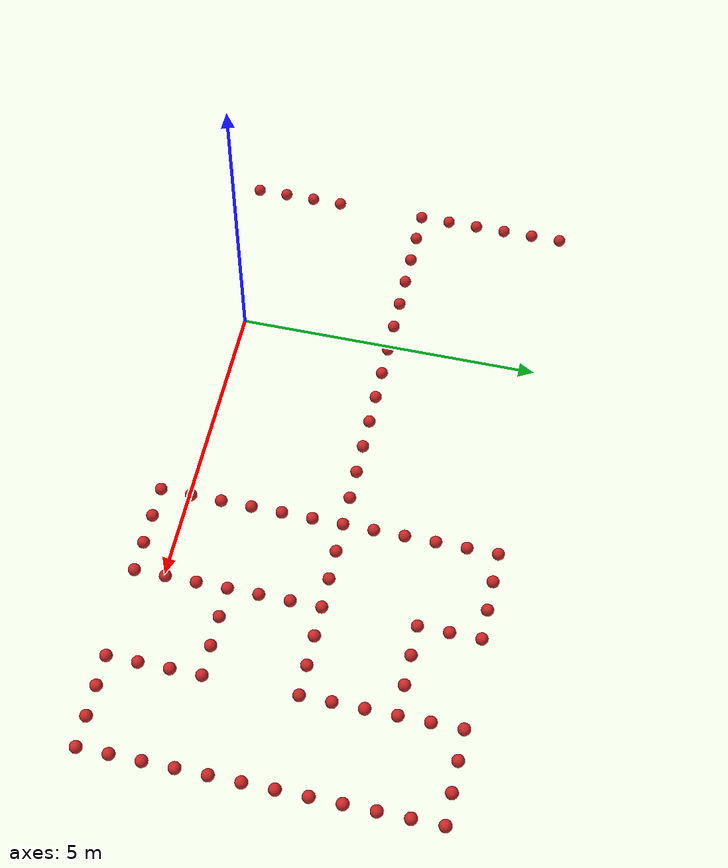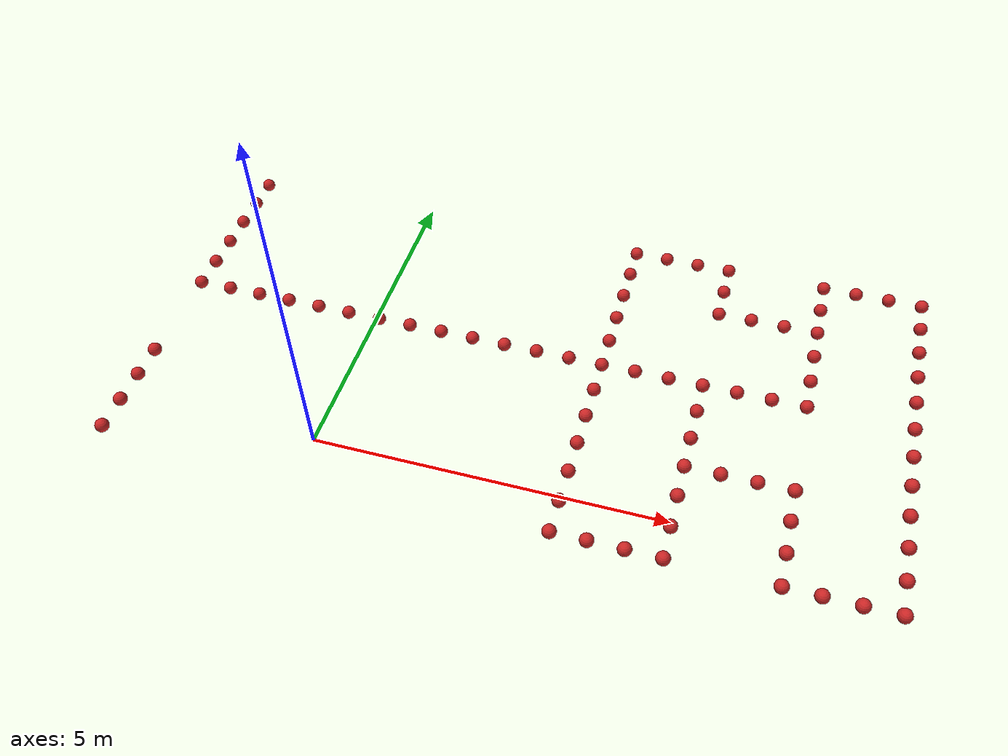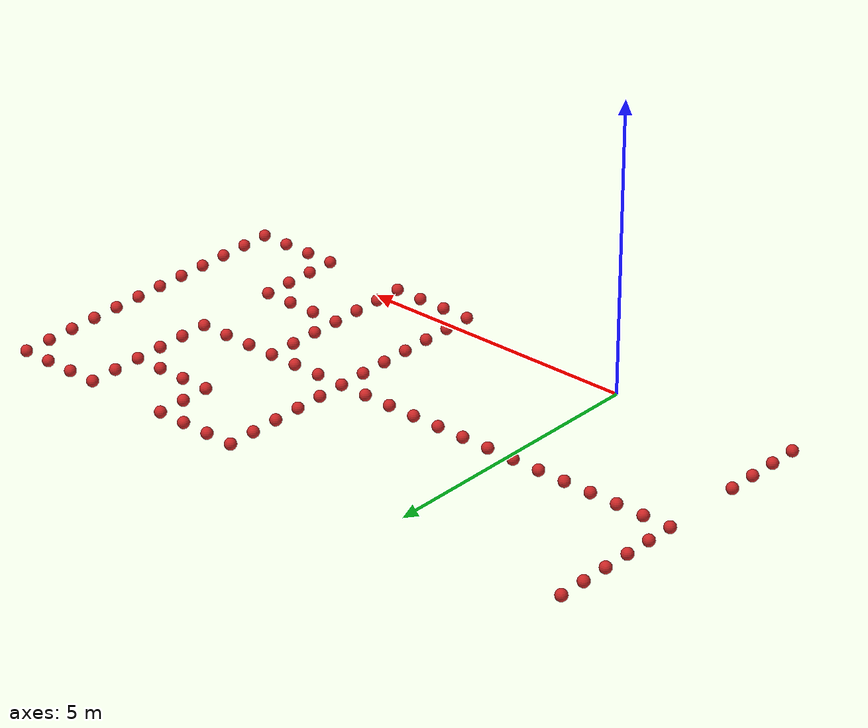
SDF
<sdf version="1.6">
 <model name="level1">
  <link name="Score_Point89">
   <collision name="Score_Point_Collision89">
    <geometry><sphere><radius>0.1</radius></sphere></geometry>
   </collision>
   <visual name="Score_Point_Visual89">
    <geometry><sphere><radius>0.1</radius></sphere></geometry>
    <material>
     <script><uri>file://media/materials/scripts/gazebo.material</uri><name>Gazebo/Red</name></script>
     <ambient>1 1 1 1</ambient>
    </material>
    <meta><layer>0</layer></meta>
   </visual>
   <pose>-3.0 -0.5 -0.08 0 0 0</pose>
   <script><uri>file://scripts/score_point_script.py</uri></script>
  </link>
  <link name="Score_Point90">
   <collision name="Score_Point_Collision90">
    <geometry><sphere><radius>0.1</radius></sphere></geometry>
   </collision>
   <visual name="Score_Point_Visual90">
    <geometry><sphere><radius>0.1</radius></sphere></geometry>
    <material>
     <script><uri>file://media/materials/scripts/gazebo.material</uri><name>Gazebo/Red</name></script>
     <ambient>1 1 1 1</ambient>
    </material>
    <meta><layer>0</layer></meta>
   </visual>
   <pose>-3.0 0.0 -0.08 0 0 0</pose>
   <script><uri>file://scripts/score_point_script.py</uri></script>
  </link>
  <link name="Score_Point91">
   <collision name="Score_Point_Collision91">
    <geometry><sphere><radius>0.1</radius></sphere></geometry>
   </collision>
   <visual name="Score_Point_Visual91">
    <geometry><sphere><radius>0.1</radius></sphere></geometry>
    <material>
     <script><uri>file://media/materials/scripts/gazebo.material</uri><name>Gazebo/Red</name></script>
     <ambient>1 1 1 1</ambient>
    </material>
    <meta><layer>0</layer></meta>
   </visual>
   <pose>-3.0 0.5 -0.08 0 0 0</pose>
   <script><uri>file://scripts/score_point_script.py</uri></script>
  </link>
  <link name="Score_Point92">
   <collision name="Score_Point_Collision92">
    <geometry><sphere><radius>0.1</radius></sphere></geometry>
   </collision>
   <visual name="Score_Point_Visual92">
    <geometry><sphere><radius>0.1</radius></sphere></geometry>
    <material>
     <script><uri>file://media/materials/scripts/gazebo.material</uri><name>Gazebo/Red</name></script>
     <ambient>1 1 1 1</ambient>
    </material>
    <meta><layer>0</layer></meta>
   </visual>
   <pose>-3.0 1.0 -0.08 0 0 0</pose>
   <script><uri>file://scripts/score_point_script.py</uri></script>
  </link>
  <link name="Score_Point93">
   <collision name="Score_Point_Collision93">
    <geometry><sphere><radius>0.1</radius></sphere></geometry>
   </collision>
   <visual name="Score_Point_Visual93">
    <geometry><sphere><radius>0.1</radius></sphere></geometry>
    <material>
     <script><uri>file://media/materials/scripts/gazebo.material</uri><name>Gazebo/Red</name></script>
     <ambient>1 1 1 1</ambient>
    </material>
    <meta><layer>0</layer></meta>
   </visual>
   <pose>-3.0 2.5 -0.08 0 0 0</pose>
   <script><uri>file://scripts/score_point_script.py</uri></script>
  </link>
  <link name="Score_Point94">
   <collision name="Score_Point_Collision94">
    <geometry><sphere><radius>0.1</radius></sphere></geometry>
   </collision>
   <visual name="Score_Point_Visual94">
    <geometry><sphere><radius>0.1</radius></sphere></geometry>
    <material>
     <script><uri>file://media/materials/scripts/gazebo.material</uri><name>Gazebo/Red</name></script>
     <ambient>1 1 1 1</ambient>
    </material>
    <meta><layer>0</layer></meta>
   </visual>
   <pose>-3.0 3.0 -0.08 0 0 0</pose>
   <script><uri>file://scripts/score_point_script.py</uri></script>
  </link>
  <link name="Score_Point95">
   <collision name="Score_Point_Collision95">
    <geometry><sphere><radius>0.1</radius></sphere></geometry>
   </collision>
   <visual name="Score_Point_Visual95">
    <geometry><sphere><radius>0.1</radius></sphere></geometry>
    <material>
     <script><uri>file://media/materials/scripts/gazebo.material</uri><name>Gazebo/Red</name></script>
     <ambient>1 1 1 1</ambient>
    </material>
    <meta><layer>0</layer></meta>
   </visual>
   <pose>-3.0 3.5 -0.08 0 0 0</pose>
   <script><uri>file://scripts/score_point_script.py</uri></script>
  </link>
  <link name="Score_Point96">
   <collision name="Score_Point_Collision96">
    <geometry><sphere><radius>0.1</radius></sphere></geometry>
   </collision>
   <visual name="Score_Point_Visual96">
    <geometry><sphere><radius>0.1</radius></sphere></geometry>
    <material>
     <script><uri>file://media/materials/scripts/gazebo.material</uri><name>Gazebo/Red</name></script>
     <ambient>1 1 1 1</ambient>
    </material>
    <meta><layer>0</layer></meta>
   </visual>
   <pose>-3.0 4.0 -0.08 0 0 0</pose>
   <script><uri>file://scripts/score_point_script.py</uri></script>
  </link>
  <link name="Score_Point97">
   <collision name="Score_Point_Collision97">
    <geometry><sphere><radius>0.1</radius></sphere></geometry>
   </collision>
   <visual name="Score_Point_Visual97">
    <geometry><sphere><radius>0.1</radius></sphere></geometry>
    <material>
     <script><uri>file://media/materials/scripts/gazebo.material</uri><name>Gazebo/Red</name></script>
     <ambient>1 1 1 1</ambient>
    </material>
    <meta><layer>0</layer></meta>
   </visual>
   <pose>-3.0 4.5 -0.08 0 0 0</pose>
   <script><uri>file://scripts/score_point_script.py</uri></script>
  </link>
  <link name="Score_Point98">
   <collision name="Score_Point_Collision98">
    <geometry><sphere><radius>0.1</radius></sphere></geometry>
   </collision>
   <visual name="Score_Point_Visual98">
    <geometry><sphere><radius>0.1</radius></sphere></geometry>
    <material>
     <script><uri>file://media/materials/scripts/gazebo.material</uri><name>Gazebo/Red</name></script>
     <ambient>1 1 1 1</ambient>
    </material>
    <meta><layer>0</layer></meta>
   </visual>
   <pose>-3.0 5.0 -0.08 0 0 0</pose>
   <script><uri>file://scripts/score_point_script.py</uri></script>
  </link>
  <link name="Score_Point100">
   <collision name="Score_Point_Collision100">
    <geometry><sphere><radius>0.1</radius></sphere></geometry>
   </collision>
   <visual name="Score_Point_Visual100">
    <geometry><sphere><radius>0.1</radius></sphere></geometry>
    <material>
     <script><uri>file://media/materials/scripts/gazebo.material</uri><name>Gazebo/Red</name></script>
     <ambient>1 1 1 1</ambient>
    </material>
    <meta><layer>0</layer></meta>
   </visual>
   <pose>-2.5 2.5 -0.08 0 0 0</pose>
   <script><uri>file://scripts/score_point_script.py</uri></script>
  </link>
  <link name="Score_Point102">
   <collision name="Score_Point_Collision102">
    <geometry><sphere><radius>0.1</radius></sphere></geometry>
   </collision>
   <visual name="Score_Point_Visual102">
    <geometry><sphere><radius>0.1</radius></sphere></geometry>
    <material>
     <script><uri>file://media/materials/scripts/gazebo.material</uri><name>Gazebo/Red</name></script>
     <ambient>1 1 1 1</ambient>
    </material>
    <meta><layer>0</layer></meta>
   </visual>
   <pose>-2.0 2.5 -0.08 0 0 0</pose>
   <script><uri>file://scripts/score_point_script.py</uri></script>
  </link>
  <link name="Score_Point104">
   <collision name="Score_Point_Collision104">
    <geometry><sphere><radius>0.1</radius></sphere></geometry>
   </collision>
   <visual name="Score_Point_Visual104">
    <geometry><sphere><radius>0.1</radius></sphere></geometry>
    <material>
     <script><uri>file://media/materials/scripts/gazebo.material</uri><name>Gazebo/Red</name></script>
     <ambient>1 1 1 1</ambient>
    </material>
    <meta><layer>0</layer></meta>
   </visual>
   <pose>-1.5 2.5 -0.08 0 0 0</pose>
   <script><uri>file://scripts/score_point_script.py</uri></script>
  </link>
  <link name="Score_Point106">
   <collision name="Score_Point_Collision106">
    <geometry><sphere><radius>0.1</radius></sphere></geometry>
   </collision>
   <visual name="Score_Point_Visual106">
    <geometry><sphere><radius>0.1</radius></sphere></geometry>
    <material>
     <script><uri>file://media/materials/scripts/gazebo.material</uri><name>Gazebo/Red</name></script>
     <ambient>1 1 1 1</ambient>
    </material>
    <meta><layer>0</layer></meta>
   </visual>
   <pose>-1.0 2.5 -0.08 0 0 0</pose>
   <script><uri>file://scripts/score_point_script.py</uri></script>
  </link>
  <link name="Score_Point108">
   <collision name="Score_Point_Collision108">
    <geometry><sphere><radius>0.1</radius></sphere></geometry>
   </collision>
   <visual name="Score_Point_Visual108">
    <geometry><sphere><radius>0.1</radius></sphere></geometry>
    <material>
     <script><uri>file://media/materials/scripts/gazebo.material</uri><name>Gazebo/Red</name></script>
     <ambient>1 1 1 1</ambient>
    </material>
    <meta><layer>0</layer></meta>
   </visual>
   <pose>-0.5 2.5 -0.08 0 0 0</pose>
   <script><uri>file://scripts/score_point_script.py</uri></script>
  </link>
  <link name="Score_Point110">
   <collision name="Score_Point_Collision110">
    <geometry><sphere><radius>0.1</radius></sphere></geometry>
   </collision>
   <visual name="Score_Point_Visual110">
    <geometry><sphere><radius>0.1</radius></sphere></geometry>
    <material>
     <script><uri>file://media/materials/scripts/gazebo.material</uri><name>Gazebo/Red</name></script>
     <ambient>1 1 1 1</ambient>
    </material>
    <meta><layer>0</layer></meta>
   </visual>
   <pose>0.0 2.5 -0.08 0 0 0</pose>
   <script><uri>file://scripts/score_point_script.py</uri></script>
  </link>
  <link name="Score_Point112">
   <collision name="Score_Point_Collision112">
    <geometry><sphere><radius>0.1</radius></sphere></geometry>
   </collision>
   <visual name="Score_Point_Visual112">
    <geometry><sphere><radius>0.1</radius></sphere></geometry>
    <material>
     <script><uri>file://media/materials/scripts/gazebo.material</uri><name>Gazebo/Red</name></script>
     <ambient>1 1 1 1</ambient>
    </material>
    <meta><layer>0</layer></meta>
   </visual>
   <pose>0.5 2.5 -0.08 0 0 0</pose>
   <script><uri>file://scripts/score_point_script.py</uri></script>
  </link>
  <link name="Score_Point114">
   <collision name="Score_Point_Collision114">
    <geometry><sphere><radius>0.1</radius></sphere></geometry>
   </collision>
   <visual name="Score_Point_Visual114">
    <geometry><sphere><radius>0.1</radius></sphere></geometry>
    <material>
     <script><uri>file://media/materials/scripts/gazebo.material</uri><name>Gazebo/Red</name></script>
     <ambient>1 1 1 1</ambient>
    </material>
    <meta><layer>0</layer></meta>
   </visual>
   <pose>1.0 2.5 -0.08 0 0 0</pose>
   <script><uri>file://scripts/score_point_script.py</uri></script>
  </link>
  <link name="Score_Point116">
   <collision name="Score_Point_Collision116">
    <geometry><sphere><radius>0.1</radius></sphere></geometry>
   </collision>
   <visual name="Score_Point_Visual116">
    <geometry><sphere><radius>0.1</radius></sphere></geometry>
    <material>
     <script><uri>file://media/materials/scripts/gazebo.material</uri><name>Gazebo/Red</name></script>
     <ambient>1 1 1 1</ambient>
    </material>
    <meta><layer>0</layer></meta>
   </visual>
   <pose>1.5 2.5 -0.08 0 0 0</pose>
   <script><uri>file://scripts/score_point_script.py</uri></script>
  </link>
  <link name="Score_Point118">
   <collision name="Score_Point_Collision118">
    <geometry><sphere><radius>0.1</radius></sphere></geometry>
   </collision>
   <visual name="Score_Point_Visual118">
    <geometry><sphere><radius>0.1</radius></sphere></geometry>
    <material>
     <script><uri>file://media/materials/scripts/gazebo.material</uri><name>Gazebo/Red</name></script>
     <ambient>1 1 1 1</ambient>
    </material>
    <meta><layer>0</layer></meta>
   </visual>
   <pose>2.0 2.5 -0.08 0 0 0</pose>
   <script><uri>file://scripts/score_point_script.py</uri></script>
  </link>
  <link name="Score_Point120">
   <collision name="Score_Point_Collision120">
    <geometry><sphere><radius>0.1</radius></sphere></geometry>
   </collision>
   <visual name="Score_Point_Visual120">
    <geometry><sphere><radius>0.1</radius></sphere></geometry>
    <material>
     <script><uri>file://media/materials/scripts/gazebo.material</uri><name>Gazebo/Red</name></script>
     <ambient>1 1 1 1</ambient>
    </material>
    <meta><layer>0</layer></meta>
   </visual>
   <pose>2.5 2.5 -0.08 0 0 0</pose>
   <script><uri>file://scripts/score_point_script.py</uri></script>
  </link>
  <link name="Score_Point122">
   <collision name="Score_Point_Collision122">
    <geometry><sphere><radius>0.1</radius></sphere></geometry>
   </collision>
   <visual name="Score_Point_Visual122">
    <geometry><sphere><radius>0.1</radius></sphere></geometry>
    <material>
     <script><uri>file://media/materials/scripts/gazebo.material</uri><name>Gazebo/Red</name></script>
     <ambient>1 1 1 1</ambient>
    </material>
    <meta><layer>0</layer></meta>
   </visual>
   <pose>3.0 2.5 -0.08 0 0 0</pose>
   <script><uri>file://scripts/score_point_script.py</uri></script>
  </link>
  <link name="Score_Point135">
   <collision name="Score_Point_Collision135">
    <geometry><sphere><radius>0.1</radius></sphere></geometry>
   </collision>
   <visual name="Score_Point_Visual135">
    <geometry><sphere><radius>0.1</radius></sphere></geometry>
    <material>
     <script><uri>file://media/materials/scripts/gazebo.material</uri><name>Gazebo/Red</name></script>
     <ambient>1 1 1 1</ambient>
    </material>
    <meta><layer>0</layer></meta>
   </visual>
   <pose>3.5 -0.5 -0.08 0 0 0</pose>
   <script><uri>file://scripts/score_point_script.py</uri></script>
  </link>
  <link name="Score_Point136">
   <collision name="Score_Point_Collision136">
    <geometry><sphere><radius>0.1</radius></sphere></geometry>
   </collision>
   <visual name="Score_Point_Visual136">
    <geometry><sphere><radius>0.1</radius></sphere></geometry>
    <material>
     <script><uri>file://media/materials/scripts/gazebo.material</uri><name>Gazebo/Red</name></script>
     <ambient>1 1 1 1</ambient>
    </material>
    <meta><layer>0</layer></meta>
   </visual>
   <pose>3.5 0.0 -0.08 0 0 0</pose>
   <script><uri>file://scripts/score_point_script.py</uri></script>
  </link>
  <link name="Score_Point137">
   <collision name="Score_Point_Collision137">
    <geometry><sphere><radius>0.1</radius></sphere></geometry>
   </collision>
   <visual name="Score_Point_Visual137">
    <geometry><sphere><radius>0.1</radius></sphere></geometry>
    <material>
     <script><uri>file://media/materials/scripts/gazebo.material</uri><name>Gazebo/Red</name></script>
     <ambient>1 1 1 1</ambient>
    </material>
    <meta><layer>0</layer></meta>
   </visual>
   <pose>3.5 0.5 -0.08 0 0 0</pose>
   <script><uri>file://scripts/score_point_script.py</uri></script>
  </link>
  <link name="Score_Point138">
   <collision name="Score_Point_Collision138">
    <geometry><sphere><radius>0.1</radius></sphere></geometry>
   </collision>
   <visual name="Score_Point_Visual138">
    <geometry><sphere><radius>0.1</radius></sphere></geometry>
    <material>
     <script><uri>file://media/materials/scripts/gazebo.material</uri><name>Gazebo/Red</name></script>
     <ambient>1 1 1 1</ambient>
    </material>
    <meta><layer>0</layer></meta>
   </visual>
   <pose>3.5 1.0 -0.08 0 0 0</pose>
   <script><uri>file://scripts/score_point_script.py</uri></script>
  </link>
  <link name="Score_Point139">
   <collision name="Score_Point_Collision139">
    <geometry><sphere><radius>0.1</radius></sphere></geometry>
   </collision>
   <visual name="Score_Point_Visual139">
    <geometry><sphere><radius>0.1</radius></sphere></geometry>
    <material>
     <script><uri>file://media/materials/scripts/gazebo.material</uri><name>Gazebo/Red</name></script>
     <ambient>1 1 1 1</ambient>
    </material>
    <meta><layer>0</layer></meta>
   </visual>
   <pose>3.5 1.5 -0.08 0 0 0</pose>
   <script><uri>file://scripts/score_point_script.py</uri></script>
  </link>
  <link name="Score_Point140">
   <collision name="Score_Point_Collision140">
    <geometry><sphere><radius>0.1</radius></sphere></geometry>
   </collision>
   <visual name="Score_Point_Visual140">
    <geometry><sphere><radius>0.1</radius></sphere></geometry>
    <material>
     <script><uri>file://media/materials/scripts/gazebo.material</uri><name>Gazebo/Red</name></script>
     <ambient>1 1 1 1</ambient>
    </material>
    <meta><layer>0</layer></meta>
   </visual>
   <pose>3.5 2.0 -0.08 0 0 0</pose>
   <script><uri>file://scripts/score_point_script.py</uri></script>
  </link>
  <link name="Score_Point141">
   <collision name="Score_Point_Collision141">
    <geometry><sphere><radius>0.1</radius></sphere></geometry>
   </collision>
   <visual name="Score_Point_Visual141">
    <geometry><sphere><radius>0.1</radius></sphere></geometry>
    <material>
     <script><uri>file://media/materials/scripts/gazebo.material</uri><name>Gazebo/Red</name></script>
     <ambient>1 1 1 1</ambient>
    </material>
    <meta><layer>0</layer></meta>
   </visual>
   <pose>3.5 2.5 -0.08 0 0 0</pose>
   <script><uri>file://scripts/score_point_script.py</uri></script>
  </link>
  <link name="Score_Point142">
   <collision name="Score_Point_Collision142">
    <geometry><sphere><radius>0.1</radius></sphere></geometry>
   </collision>
   <visual name="Score_Point_Visual142">
    <geometry><sphere><radius>0.1</radius></sphere></geometry>
    <material>
     <script><uri>file://media/materials/scripts/gazebo.material</uri><name>Gazebo/Red</name></script>
     <ambient>1 1 1 1</ambient>
    </material>
    <meta><layer>0</layer></meta>
   </visual>
   <pose>3.5 3.0 -0.08 0 0 0</pose>
   <script><uri>file://scripts/score_point_script.py</uri></script>
  </link>
  <link name="Score_Point143">
   <collision name="Score_Point_Collision143">
    <geometry><sphere><radius>0.1</radius></sphere></geometry>
   </collision>
   <visual name="Score_Point_Visual143">
    <geometry><sphere><radius>0.1</radius></sphere></geometry>
    <material>
     <script><uri>file://media/materials/scripts/gazebo.material</uri><name>Gazebo/Red</name></script>
     <ambient>1 1 1 1</ambient>
    </material>
    <meta><layer>0</layer></meta>
   </visual>
   <pose>3.5 3.5 -0.08 0 0 0</pose>
   <script><uri>file://scripts/score_point_script.py</uri></script>
  </link>
  <link name="Score_Point144">
   <collision name="Score_Point_Collision144">
    <geometry><sphere><radius>0.1</radius></sphere></geometry>
   </collision>
   <visual name="Score_Point_Visual144">
    <geometry><sphere><radius>0.1</radius></sphere></geometry>
    <material>
     <script><uri>file://media/materials/scripts/gazebo.material</uri><name>Gazebo/Red</name></script>
     <ambient>1 1 1 1</ambient>
    </material>
    <meta><layer>0</layer></meta>
   </visual>
   <pose>3.5 4.0 -0.08 0 0 0</pose>
   <script><uri>file://scripts/score_point_script.py</uri></script>
  </link>
  <link name="Score_Point145">
   <collision name="Score_Point_Collision145">
    <geometry><sphere><radius>0.1</radius></sphere></geometry>
   </collision>
   <visual name="Score_Point_Visual145">
    <geometry><sphere><radius>0.1</radius></sphere></geometry>
    <material>
     <script><uri>file://media/materials/scripts/gazebo.material</uri><name>Gazebo/Red</name></script>
     <ambient>1 1 1 1</ambient>
    </material>
    <meta><layer>0</layer></meta>
   </visual>
   <pose>3.5 4.5 -0.08 0 0 0</pose>
   <script><uri>file://scripts/score_point_script.py</uri></script>
  </link>
  <link name="Score_Point146">
   <collision name="Score_Point_Collision146">
    <geometry><sphere><radius>0.1</radius></sphere></geometry>
   </collision>
   <visual name="Score_Point_Visual146">
    <geometry><sphere><radius>0.1</radius></sphere></geometry>
    <material>
     <script><uri>file://media/materials/scripts/gazebo.material</uri><name>Gazebo/Red</name></script>
     <ambient>1 1 1 1</ambient>
    </material>
    <meta><layer>0</layer></meta>
   </visual>
   <pose>3.5 5.0 -0.08 0 0 0</pose>
   <script><uri>file://scripts/score_point_script.py</uri></script>
  </link>
  <link name="Score_Point150">
   <collision name="Score_Point_Collision150">
    <geometry><sphere><radius>0.1</radius></sphere></geometry>
   </collision>
   <visual name="Score_Point_Visual150">
    <geometry><sphere><radius>0.1</radius></sphere></geometry>
    <material>
     <script><uri>file://media/materials/scripts/gazebo.material</uri><name>Gazebo/Red</name></script>
     <ambient>1 1 1 1</ambient>
    </material>
    <meta><layer>0</layer></meta>
   </visual>
   <pose>4.0 -0.5 -0.08 0 0 0</pose>
   <script><uri>file://scripts/score_point_script.py</uri></script>
  </link>
  <link name="Score_Point151">
   <collision name="Score_Point_Collision151">
    <geometry><sphere><radius>0.1</radius></sphere></geometry>
   </collision>
   <visual name="Score_Point_Visual151">
    <geometry><sphere><radius>0.1</radius></sphere></geometry>
    <material>
     <script><uri>file://media/materials/scripts/gazebo.material</uri><name>Gazebo/Red</name></script>
     <ambient>1 1 1 1</ambient>
    </material>
    <meta><layer>0</layer></meta>
   </visual>
   <pose>4.0 2.5 -0.08 0 0 0</pose>
   <script><uri>file://scripts/score_point_script.py</uri></script>
  </link>
  <link name="Score_Point152">
   <collision name="Score_Point_Collision152">
    <geometry><sphere><radius>0.1</radius></sphere></geometry>
   </collision>
   <visual name="Score_Point_Visual152">
    <geometry><sphere><radius>0.1</radius></sphere></geometry>
    <material>
     <script><uri>file://media/materials/scripts/gazebo.material</uri><name>Gazebo/Red</name></script>
     <ambient>1 1 1 1</ambient>
    </material>
    <meta><layer>0</layer></meta>
   </visual>
   <pose>4.0 5.0 -0.08 0 0 0</pose>
   <script><uri>file://scripts/score_point_script.py</uri></script>
  </link>
  <link name="Score_Point156">
   <collision name="Score_Point_Collision156">
    <geometry><sphere><radius>0.1</radius></sphere></geometry>
   </collision>
   <visual name="Score_Point_Visual156">
    <geometry><sphere><radius>0.1</radius></sphere></geometry>
    <material>
     <script><uri>file://media/materials/scripts/gazebo.material</uri><name>Gazebo/Red</name></script>
     <ambient>1 1 1 1</ambient>
    </material>
    <meta><layer>0</layer></meta>
   </visual>
   <pose>4.5 -0.5 -0.08 0 0 0</pose>
   <script><uri>file://scripts/score_point_script.py</uri></script>
  </link>
  <link name="Score_Point157">
   <collision name="Score_Point_Collision157">
    <geometry><sphere><radius>0.1</radius></sphere></geometry>
   </collision>
   <visual name="Score_Point_Visual157">
    <geometry><sphere><radius>0.1</radius></sphere></geometry>
    <material>
     <script><uri>file://media/materials/scripts/gazebo.material</uri><name>Gazebo/Red</name></script>
     <ambient>1 1 1 1</ambient>
    </material>
    <meta><layer>0</layer></meta>
   </visual>
   <pose>4.5 2.5 -0.08 0 0 0</pose>
   <script><uri>file://scripts/score_point_script.py</uri></script>
  </link>
  <link name="Score_Point158">
   <collision name="Score_Point_Collision158">
    <geometry><sphere><radius>0.1</radius></sphere></geometry>
   </collision>
   <visual name="Score_Point_Visual158">
    <geometry><sphere><radius>0.1</radius></sphere></geometry>
    <material>
     <script><uri>file://media/materials/scripts/gazebo.material</uri><name>Gazebo/Red</name></script>
     <ambient>1 1 1 1</ambient>
    </material>
    <meta><layer>0</layer></meta>
   </visual>
   <pose>4.5 5.0 -0.08 0 0 0</pose>
   <script><uri>file://scripts/score_point_script.py</uri></script>
  </link>
  <link name="Score_Point171">
   <collision name="Score_Point_Collision171">
    <geometry><sphere><radius>0.1</radius></sphere></geometry>
   </collision>
   <visual name="Score_Point_Visual171">
    <geometry><sphere><radius>0.1</radius></sphere></geometry>
    <material>
     <script><uri>file://media/materials/scripts/gazebo.material</uri><name>Gazebo/Red</name></script>
     <ambient>1 1 1 1</ambient>
    </material>
    <meta><layer>0</layer></meta>
   </visual>
   <pose>5.0 -0.5 -0.08 0 0 0</pose>
   <script><uri>file://scripts/score_point_script.py</uri></script>
  </link>
  <link name="Score_Point172">
   <collision name="Score_Point_Collision172">
    <geometry><sphere><radius>0.1</radius></sphere></geometry>
   </collision>
   <visual name="Score_Point_Visual172">
    <geometry><sphere><radius>0.1</radius></sphere></geometry>
    <material>
     <script><uri>file://media/materials/scripts/gazebo.material</uri><name>Gazebo/Red</name></script>
     <ambient>1 1 1 1</ambient>
    </material>
    <meta><layer>0</layer></meta>
   </visual>
   <pose>5.0 0.0 -0.08 0 0 0</pose>
   <script><uri>file://scripts/score_point_script.py</uri></script>
  </link>
  <link name="Score_Point173">
   <collision name="Score_Point_Collision173">
    <geometry><sphere><radius>0.1</radius></sphere></geometry>
   </collision>
   <visual name="Score_Point_Visual173">
    <geometry><sphere><radius>0.1</radius></sphere></geometry>
    <material>
     <script><uri>file://media/materials/scripts/gazebo.material</uri><name>Gazebo/Red</name></script>
     <ambient>1 1 1 1</ambient>
    </material>
    <meta><layer>0</layer></meta>
   </visual>
   <pose>5.0 0.5 -0.08 0 0 0</pose>
   <script><uri>file://scripts/score_point_script.py</uri></script>
  </link>
  <link name="Score_Point174">
   <collision name="Score_Point_Collision174">
    <geometry><sphere><radius>0.1</radius></sphere></geometry>
   </collision>
   <visual name="Score_Point_Visual174">
    <geometry><sphere><radius>0.1</radius></sphere></geometry>
    <material>
     <script><uri>file://media/materials/scripts/gazebo.material</uri><name>Gazebo/Red</name></script>
     <ambient>1 1 1 1</ambient>
    </material>
    <meta><layer>0</layer></meta>
   </visual>
   <pose>5.0 1.0 -0.08 0 0 0</pose>
   <script><uri>file://scripts/score_point_script.py</uri></script>
  </link>
  <link name="Score_Point175">
   <collision name="Score_Point_Collision175">
    <geometry><sphere><radius>0.1</radius></sphere></geometry>
   </collision>
   <visual name="Score_Point_Visual175">
    <geometry><sphere><radius>0.1</radius></sphere></geometry>
    <material>
     <script><uri>file://media/materials/scripts/gazebo.material</uri><name>Gazebo/Red</name></script>
     <ambient>1 1 1 1</ambient>
    </material>
    <meta><layer>0</layer></meta>
   </visual>
   <pose>5.0 1.5 -0.08 0 0 0</pose>
   <script><uri>file://scripts/score_point_script.py</uri></script>
  </link>
  <link name="Score_Point176">
   <collision name="Score_Point_Collision176">
    <geometry><sphere><radius>0.1</radius></sphere></geometry>
   </collision>
   <visual name="Score_Point_Visual176">
    <geometry><sphere><radius>0.1</radius></sphere></geometry>
    <material>
     <script><uri>file://media/materials/scripts/gazebo.material</uri><name>Gazebo/Red</name></script>
     <ambient>1 1 1 1</ambient>
    </material>
    <meta><layer>0</layer></meta>
   </visual>
   <pose>5.0 2.0 -0.08 0 0 0</pose>
   <script><uri>file://scripts/score_point_script.py</uri></script>
  </link>
  <link name="Score_Point177">
   <collision name="Score_Point_Collision177">
    <geometry><sphere><radius>0.1</radius></sphere></geometry>
   </collision>
   <visual name="Score_Point_Visual177">
    <geometry><sphere><radius>0.1</radius></sphere></geometry>
    <material>
     <script><uri>file://media/materials/scripts/gazebo.material</uri><name>Gazebo/Red</name></script>
     <ambient>1 1 1 1</ambient>
    </material>
    <meta><layer>0</layer></meta>
   </visual>
   <pose>5.0 2.5 -0.08 0 0 0</pose>
   <script><uri>file://scripts/score_point_script.py</uri></script>
  </link>
  <link name="Score_Point178">
   <collision name="Score_Point_Collision178">
    <geometry><sphere><radius>0.1</radius></sphere></geometry>
   </collision>
   <visual name="Score_Point_Visual178">
    <geometry><sphere><radius>0.1</radius></sphere></geometry>
    <material>
     <script><uri>file://media/materials/scripts/gazebo.material</uri><name>Gazebo/Red</name></script>
     <ambient>1 1 1 1</ambient>
    </material>
    <meta><layer>0</layer></meta>
   </visual>
   <pose>5.0 4.0 -0.08 0 0 0</pose>
   <script><uri>file://scripts/score_point_script.py</uri></script>
  </link>
  <link name="Score_Point179">
   <collision name="Score_Point_Collision179">
    <geometry><sphere><radius>0.1</radius></sphere></geometry>
   </collision>
   <visual name="Score_Point_Visual179">
    <geometry><sphere><radius>0.1</radius></sphere></geometry>
    <material>
     <script><uri>file://media/materials/scripts/gazebo.material</uri><name>Gazebo/Red</name></script>
     <ambient>1 1 1 1</ambient>
    </material>
    <meta><layer>0</layer></meta>
   </visual>
   <pose>5.0 4.5 -0.08 0 0 0</pose>
   <script><uri>file://scripts/score_point_script.py</uri></script>
  </link>
  <link name="Score_Point180">
   <collision name="Score_Point_Collision180">
    <geometry><sphere><radius>0.1</radius></sphere></geometry>
   </collision>
   <visual name="Score_Point_Visual180">
    <geometry><sphere><radius>0.1</radius></sphere></geometry>
    <material>
     <script><uri>file://media/materials/scripts/gazebo.material</uri><name>Gazebo/Red</name></script>
     <ambient>1 1 1 1</ambient>
    </material>
    <meta><layer>0</layer></meta>
   </visual>
   <pose>5.0 5.0 -0.08 0 0 0</pose>
   <script><uri>file://scripts/score_point_script.py</uri></script>
  </link>
  <link name="Score_Point184">
   <collision name="Score_Point_Collision184">
    <geometry><sphere><radius>0.1</radius></sphere></geometry>
   </collision>
   <visual name="Score_Point_Visual184">
    <geometry><sphere><radius>0.1</radius></sphere></geometry>
    <material>
     <script><uri>file://media/materials/scripts/gazebo.material</uri><name>Gazebo/Red</name></script>
     <ambient>1 1 1 1</ambient>
    </material>
    <meta><layer>0</layer></meta>
   </visual>
   <pose>5.5 1.0 -0.08 0 0 0</pose>
   <script><uri>file://scripts/score_point_script.py</uri></script>
  </link>
  <link name="Score_Point185">
   <collision name="Score_Point_Collision185">
    <geometry><sphere><radius>0.1</radius></sphere></geometry>
   </collision>
   <visual name="Score_Point_Visual185">
    <geometry><sphere><radius>0.1</radius></sphere></geometry>
    <material>
     <script><uri>file://media/materials/scripts/gazebo.material</uri><name>Gazebo/Red</name></script>
     <ambient>1 1 1 1</ambient>
    </material>
    <meta><layer>0</layer></meta>
   </visual>
   <pose>5.5 2.5 -0.08 0 0 0</pose>
   <script><uri>file://scripts/score_point_script.py</uri></script>
  </link>
  <link name="Score_Point186">
   <collision name="Score_Point_Collision186">
    <geometry><sphere><radius>0.1</radius></sphere></geometry>
   </collision>
   <visual name="Score_Point_Visual186">
    <geometry><sphere><radius>0.1</radius></sphere></geometry>
    <material>
     <script><uri>file://media/materials/scripts/gazebo.material</uri><name>Gazebo/Red</name></script>
     <ambient>1 1 1 1</ambient>
    </material>
    <meta><layer>0</layer></meta>
   </visual>
   <pose>5.5 4.0 -0.08 0 0 0</pose>
   <script><uri>file://scripts/score_point_script.py</uri></script>
  </link>
  <link name="Score_Point190">
   <collision name="Score_Point_Collision190">
    <geometry><sphere><radius>0.1</radius></sphere></geometry>
   </collision>
   <visual name="Score_Point_Visual190">
    <geometry><sphere><radius>0.1</radius></sphere></geometry>
    <material>
     <script><uri>file://media/materials/scripts/gazebo.material</uri><name>Gazebo/Red</name></script>
     <ambient>1 1 1 1</ambient>
    </material>
    <meta><layer>0</layer></meta>
   </visual>
   <pose>6.0 1.0 -0.08 0 0 0</pose>
   <script><uri>file://scripts/score_point_script.py</uri></script>
  </link>
  <link name="Score_Point191">
   <collision name="Score_Point_Collision191">
    <geometry><sphere><radius>0.1</radius></sphere></geometry>
   </collision>
   <visual name="Score_Point_Visual191">
    <geometry><sphere><radius>0.1</radius></sphere></geometry>
    <material>
     <script><uri>file://media/materials/scripts/gazebo.material</uri><name>Gazebo/Red</name></script>
     <ambient>1 1 1 1</ambient>
    </material>
    <meta><layer>0</layer></meta>
   </visual>
   <pose>6.0 2.5 -0.08 0 0 0</pose>
   <script><uri>file://scripts/score_point_script.py</uri></script>
  </link>
  <link name="Score_Point192">
   <collision name="Score_Point_Collision192">
    <geometry><sphere><radius>0.1</radius></sphere></geometry>
   </collision>
   <visual name="Score_Point_Visual192">
    <geometry><sphere><radius>0.1</radius></sphere></geometry>
    <material>
     <script><uri>file://media/materials/scripts/gazebo.material</uri><name>Gazebo/Red</name></script>
     <ambient>1 1 1 1</ambient>
    </material>
    <meta><layer>0</layer></meta>
   </visual>
   <pose>6.0 4.0 -0.08 0 0 0</pose>
   <script><uri>file://scripts/score_point_script.py</uri></script>
  </link>
  <link name="Score_Point203">
   <collision name="Score_Point_Collision203">
    <geometry><sphere><radius>0.1</radius></sphere></geometry>
   </collision>
   <visual name="Score_Point_Visual203">
    <geometry><sphere><radius>0.1</radius></sphere></geometry>
    <material>
     <script><uri>file://media/materials/scripts/gazebo.material</uri><name>Gazebo/Red</name></script>
     <ambient>1 1 1 1</ambient>
    </material>
    <meta><layer>0</layer></meta>
   </visual>
   <pose>6.5 -0.5 -0.08 0 0 0</pose>
   <script><uri>file://scripts/score_point_script.py</uri></script>
  </link>
  <link name="Score_Point204">
   <collision name="Score_Point_Collision204">
    <geometry><sphere><radius>0.1</radius></sphere></geometry>
   </collision>
   <visual name="Score_Point_Visual204">
    <geometry><sphere><radius>0.1</radius></sphere></geometry>
    <material>
     <script><uri>file://media/materials/scripts/gazebo.material</uri><name>Gazebo/Red</name></script>
     <ambient>1 1 1 1</ambient>
    </material>
    <meta><layer>0</layer></meta>
   </visual>
   <pose>6.5 0.0 -0.08 0 0 0</pose>
   <script><uri>file://scripts/score_point_script.py</uri></script>
  </link>
  <link name="Score_Point205">
   <collision name="Score_Point_Collision205">
    <geometry><sphere><radius>0.1</radius></sphere></geometry>
   </collision>
   <visual name="Score_Point_Visual205">
    <geometry><sphere><radius>0.1</radius></sphere></geometry>
    <material>
     <script><uri>file://media/materials/scripts/gazebo.material</uri><name>Gazebo/Red</name></script>
     <ambient>1 1 1 1</ambient>
    </material>
    <meta><layer>0</layer></meta>
   </visual>
   <pose>6.5 0.5 -0.08 0 0 0</pose>
   <script><uri>file://scripts/score_point_script.py</uri></script>
  </link>
  <link name="Score_Point206">
   <collision name="Score_Point_Collision206">
    <geometry><sphere><radius>0.1</radius></sphere></geometry>
   </collision>
   <visual name="Score_Point_Visual206">
    <geometry><sphere><radius>0.1</radius></sphere></geometry>
    <material>
     <script><uri>file://media/materials/scripts/gazebo.material</uri><name>Gazebo/Red</name></script>
     <ambient>1 1 1 1</ambient>
    </material>
    <meta><layer>0</layer></meta>
   </visual>
   <pose>6.5 1.0 -0.08 0 0 0</pose>
   <script><uri>file://scripts/score_point_script.py</uri></script>
  </link>
  <link name="Score_Point207">
   <collision name="Score_Point_Collision207">
    <geometry><sphere><radius>0.1</radius></sphere></geometry>
   </collision>
   <visual name="Score_Point_Visual207">
    <geometry><sphere><radius>0.1</radius></sphere></geometry>
    <material>
     <script><uri>file://media/materials/scripts/gazebo.material</uri><name>Gazebo/Red</name></script>
     <ambient>1 1 1 1</ambient>
    </material>
    <meta><layer>0</layer></meta>
   </visual>
   <pose>6.5 2.5 -0.08 0 0 0</pose>
   <script><uri>file://scripts/score_point_script.py</uri></script>
  </link>
  <link name="Score_Point208">
   <collision name="Score_Point_Collision208">
    <geometry><sphere><radius>0.1</radius></sphere></geometry>
   </collision>
   <visual name="Score_Point_Visual208">
    <geometry><sphere><radius>0.1</radius></sphere></geometry>
    <material>
     <script><uri>file://media/materials/scripts/gazebo.material</uri><name>Gazebo/Red</name></script>
     <ambient>1 1 1 1</ambient>
    </material>
    <meta><layer>0</layer></meta>
   </visual>
   <pose>6.5 3.0 -0.08 0 0 0</pose>
   <script><uri>file://scripts/score_point_script.py</uri></script>
  </link>
  <link name="Score_Point209">
   <collision name="Score_Point_Collision209">
    <geometry><sphere><radius>0.1</radius></sphere></geometry>
   </collision>
   <visual name="Score_Point_Visual209">
    <geometry><sphere><radius>0.1</radius></sphere></geometry>
    <material>
     <script><uri>file://media/materials/scripts/gazebo.material</uri><name>Gazebo/Red</name></script>
     <ambient>1 1 1 1</ambient>
    </material>
    <meta><layer>0</layer></meta>
   </visual>
   <pose>6.5 3.5 -0.08 0 0 0</pose>
   <script><uri>file://scripts/score_point_script.py</uri></script>
  </link>
  <link name="Score_Point210">
   <collision name="Score_Point_Collision210">
    <geometry><sphere><radius>0.1</radius></sphere></geometry>
   </collision>
   <visual name="Score_Point_Visual210">
    <geometry><sphere><radius>0.1</radius></sphere></geometry>
    <material>
     <script><uri>file://media/materials/scripts/gazebo.material</uri><name>Gazebo/Red</name></script>
     <ambient>1 1 1 1</ambient>
    </material>
    <meta><layer>0</layer></meta>
   </visual>
   <pose>6.5 4.0 -0.08 0 0 0</pose>
   <script><uri>file://scripts/score_point_script.py</uri></script>
  </link>
  <link name="Score_Point211">
   <collision name="Score_Point_Collision211">
    <geometry><sphere><radius>0.1</radius></sphere></geometry>
   </collision>
   <visual name="Score_Point_Visual211">
    <geometry><sphere><radius>0.1</radius></sphere></geometry>
    <material>
     <script><uri>file://media/materials/scripts/gazebo.material</uri><name>Gazebo/Red</name></script>
     <ambient>1 1 1 1</ambient>
    </material>
    <meta><layer>0</layer></meta>
   </visual>
   <pose>6.5 4.5 -0.08 0 0 0</pose>
   <script><uri>file://scripts/score_point_script.py</uri></script>
  </link>
  <link name="Score_Point212">
   <collision name="Score_Point_Collision212">
    <geometry><sphere><radius>0.1</radius></sphere></geometry>
   </collision>
   <visual name="Score_Point_Visual212">
    <geometry><sphere><radius>0.1</radius></sphere></geometry>
    <material>
     <script><uri>file://media/materials/scripts/gazebo.material</uri><name>Gazebo/Red</name></script>
     <ambient>1 1 1 1</ambient>
    </material>
    <meta><layer>0</layer></meta>
   </visual>
   <pose>6.5 5.0 -0.08 0 0 0</pose>
   <script><uri>file://scripts/score_point_script.py</uri></script>
  </link>
  <link name="Score_Point215">
   <collision name="Score_Point_Collision215">
    <geometry><sphere><radius>0.1</radius></sphere></geometry>
   </collision>
   <visual name="Score_Point_Visual215">
    <geometry><sphere><radius>0.1</radius></sphere></geometry>
    <material>
     <script><uri>file://media/materials/scripts/gazebo.material</uri><name>Gazebo/Red</name></script>
     <ambient>1 1 1 1</ambient>
    </material>
    <meta><layer>0</layer></meta>
   </visual>
   <pose>7.0 -0.5 -0.08 0 0 0</pose>
   <script><uri>file://scripts/score_point_script.py</uri></script>
  </link>
  <link name="Score_Point216">
   <collision name="Score_Point_Collision216">
    <geometry><sphere><radius>0.1</radius></sphere></geometry>
   </collision>
   <visual name="Score_Point_Visual216">
    <geometry><sphere><radius>0.1</radius></sphere></geometry>
    <material>
     <script><uri>file://media/materials/scripts/gazebo.material</uri><name>Gazebo/Red</name></script>
     <ambient>1 1 1 1</ambient>
    </material>
    <meta><layer>0</layer></meta>
   </visual>
   <pose>7.0 5.0 -0.08 0 0 0</pose>
   <script><uri>file://scripts/score_point_script.py</uri></script>
  </link>
  <link name="Score_Point219">
   <collision name="Score_Point_Collision219">
    <geometry><sphere><radius>0.1</radius></sphere></geometry>
   </collision>
   <visual name="Score_Point_Visual219">
    <geometry><sphere><radius>0.1</radius></sphere></geometry>
    <material>
     <script><uri>file://media/materials/scripts/gazebo.material</uri><name>Gazebo/Red</name></script>
     <ambient>1 1 1 1</ambient>
    </material>
    <meta><layer>0</layer></meta>
   </visual>
   <pose>7.5 -0.5 -0.08 0 0 0</pose>
   <script><uri>file://scripts/score_point_script.py</uri></script>
  </link>
  <link name="Score_Point220">
   <collision name="Score_Point_Collision220">
    <geometry><sphere><radius>0.1</radius></sphere></geometry>
   </collision>
   <visual name="Score_Point_Visual220">
    <geometry><sphere><radius>0.1</radius></sphere></geometry>
    <material>
     <script><uri>file://media/materials/scripts/gazebo.material</uri><name>Gazebo/Red</name></script>
     <ambient>1 1 1 1</ambient>
    </material>
    <meta><layer>0</layer></meta>
   </visual>
   <pose>7.5 5.0 -0.08 0 0 0</pose>
   <script><uri>file://scripts/score_point_script.py</uri></script>
  </link>
  <link name="Score_Point235">
   <collision name="Score_Point_Collision235">
    <geometry><sphere><radius>0.1</radius></sphere></geometry>
   </collision>
   <visual name="Score_Point_Visual235">
    <geometry><sphere><radius>0.1</radius></sphere></geometry>
    <material>
     <script><uri>file://media/materials/scripts/gazebo.material</uri><name>Gazebo/Red</name></script>
     <ambient>1 1 1 1</ambient>
    </material>
    <meta><layer>0</layer></meta>
   </visual>
   <pose>8.0 -0.5 -0.08 0 0 0</pose>
   <script><uri>file://scripts/score_point_script.py</uri></script>
  </link>
  <link name="Score_Point236">
   <collision name="Score_Point_Collision236">
    <geometry><sphere><radius>0.1</radius></sphere></geometry>
   </collision>
   <visual name="Score_Point_Visual236">
    <geometry><sphere><radius>0.1</radius></sphere></geometry>
    <material>
     <script><uri>file://media/materials/scripts/gazebo.material</uri><name>Gazebo/Red</name></script>
     <ambient>1 1 1 1</ambient>
    </material>
    <meta><layer>0</layer></meta>
   </visual>
   <pose>8.0 0.0 -0.08 0 0 0</pose>
   <script><uri>file://scripts/score_point_script.py</uri></script>
  </link>
  <link name="Score_Point237">
   <collision name="Score_Point_Collision237">
    <geometry><sphere><radius>0.1</radius></sphere></geometry>
   </collision>
   <visual name="Score_Point_Visual237">
    <geometry><sphere><radius>0.1</radius></sphere></geometry>
    <material>
     <script><uri>file://media/materials/scripts/gazebo.material</uri><name>Gazebo/Red</name></script>
     <ambient>1 1 1 1</ambient>
    </material>
    <meta><layer>0</layer></meta>
   </visual>
   <pose>8.0 0.5 -0.08 0 0 0</pose>
   <script><uri>file://scripts/score_point_script.py</uri></script>
  </link>
  <link name="Score_Point238">
   <collision name="Score_Point_Collision238">
    <geometry><sphere><radius>0.1</radius></sphere></geometry>
   </collision>
   <visual name="Score_Point_Visual238">
    <geometry><sphere><radius>0.1</radius></sphere></geometry>
    <material>
     <script><uri>file://media/materials/scripts/gazebo.material</uri><name>Gazebo/Red</name></script>
     <ambient>1 1 1 1</ambient>
    </material>
    <meta><layer>0</layer></meta>
   </visual>
   <pose>8.0 1.0 -0.08 0 0 0</pose>
   <script><uri>file://scripts/score_point_script.py</uri></script>
  </link>
  <link name="Score_Point239">
   <collision name="Score_Point_Collision239">
    <geometry><sphere><radius>0.1</radius></sphere></geometry>
   </collision>
   <visual name="Score_Point_Visual239">
    <geometry><sphere><radius>0.1</radius></sphere></geometry>
    <material>
     <script><uri>file://media/materials/scripts/gazebo.material</uri><name>Gazebo/Red</name></script>
     <ambient>1 1 1 1</ambient>
    </material>
    <meta><layer>0</layer></meta>
   </visual>
   <pose>8.0 1.5 -0.08 0 0 0</pose>
   <script><uri>file://scripts/score_point_script.py</uri></script>
  </link>
  <link name="Score_Point240">
   <collision name="Score_Point_Collision240">
    <geometry><sphere><radius>0.1</radius></sphere></geometry>
   </collision>
   <visual name="Score_Point_Visual240">
    <geometry><sphere><radius>0.1</radius></sphere></geometry>
    <material>
     <script><uri>file://media/materials/scripts/gazebo.material</uri><name>Gazebo/Red</name></script>
     <ambient>1 1 1 1</ambient>
    </material>
    <meta><layer>0</layer></meta>
   </visual>
   <pose>8.0 2.0 -0.08 0 0 0</pose>
   <script><uri>file://scripts/score_point_script.py</uri></script>
  </link>
  <link name="Score_Point241">
   <collision name="Score_Point_Collision241">
    <geometry><sphere><radius>0.1</radius></sphere></geometry>
   </collision>
   <visual name="Score_Point_Visual241">
    <geometry><sphere><radius>0.1</radius></sphere></geometry>
    <material>
     <script><uri>file://media/materials/scripts/gazebo.material</uri><name>Gazebo/Red</name></script>
     <ambient>1 1 1 1</ambient>
    </material>
    <meta><layer>0</layer></meta>
   </visual>
   <pose>8.0 2.5 -0.08 0 0 0</pose>
   <script><uri>file://scripts/score_point_script.py</uri></script>
  </link>
  <link name="Score_Point242">
   <collision name="Score_Point_Collision242">
    <geometry><sphere><radius>0.1</radius></sphere></geometry>
   </collision>
   <visual name="Score_Point_Visual242">
    <geometry><sphere><radius>0.1</radius></sphere></geometry>
    <material>
     <script><uri>file://media/materials/scripts/gazebo.material</uri><name>Gazebo/Red</name></script>
     <ambient>1 1 1 1</ambient>
    </material>
    <meta><layer>0</layer></meta>
   </visual>
   <pose>8.0 3.0 -0.08 0 0 0</pose>
   <script><uri>file://scripts/score_point_script.py</uri></script>
  </link>
  <link name="Score_Point243">
   <collision name="Score_Point_Collision243">
    <geometry><sphere><radius>0.1</radius></sphere></geometry>
   </collision>
   <visual name="Score_Point_Visual243">
    <geometry><sphere><radius>0.1</radius></sphere></geometry>
    <material>
     <script><uri>file://media/materials/scripts/gazebo.material</uri><name>Gazebo/Red</name></script>
     <ambient>1 1 1 1</ambient>
    </material>
    <meta><layer>0</layer></meta>
   </visual>
   <pose>8.0 3.5 -0.08 0 0 0</pose>
   <script><uri>file://scripts/score_point_script.py</uri></script>
  </link>
  <link name="Score_Point244">
   <collision name="Score_Point_Collision244">
    <geometry><sphere><radius>0.1</radius></sphere></geometry>
   </collision>
   <visual name="Score_Point_Visual244">
    <geometry><sphere><radius>0.1</radius></sphere></geometry>
    <material>
     <script><uri>file://media/materials/scripts/gazebo.material</uri><name>Gazebo/Red</name></script>
     <ambient>1 1 1 1</ambient>
    </material>
    <meta><layer>0</layer></meta>
   </visual>
   <pose>8.0 4.0 -0.08 0 0 0</pose>
   <script><uri>file://scripts/score_point_script.py</uri></script>
  </link>
  <link name="Score_Point245">
   <collision name="Score_Point_Collision245">
    <geometry><sphere><radius>0.1</radius></sphere></geometry>
   </collision>
   <visual name="Score_Point_Visual245">
    <geometry><sphere><radius>0.1</radius></sphere></geometry>
    <material>
     <script><uri>file://media/materials/scripts/gazebo.material</uri><name>Gazebo/Red</name></script>
     <ambient>1 1 1 1</ambient>
    </material>
    <meta><layer>0</layer></meta>
   </visual>
   <pose>8.0 4.5 -0.08 0 0 0</pose>
   <script><uri>file://scripts/score_point_script.py</uri></script>
  </link>
  <link name="Score_Point246">
   <collision name="Score_Point_Collision246">
    <geometry><sphere><radius>0.1</radius></sphere></geometry>
   </collision>
   <visual name="Score_Point_Visual246">
    <geometry><sphere><radius>0.1</radius></sphere></geometry>
    <material>
     <script><uri>file://media/materials/scripts/gazebo.material</uri><name>Gazebo/Red</name></script>
     <ambient>1 1 1 1</ambient>
    </material>
    <meta><layer>0</layer></meta>
   </visual>
   <pose>8.0 5.0 -0.08 0 0 0</pose>
   <script><uri>file://scripts/score_point_script.py</uri></script>
  </link>
  <static>1</static>
 </model>
</sdf>
